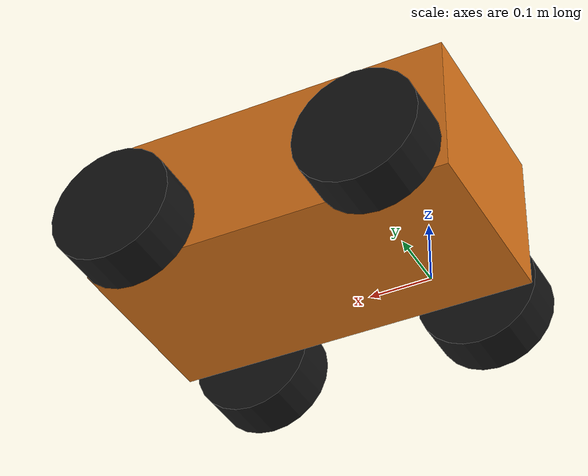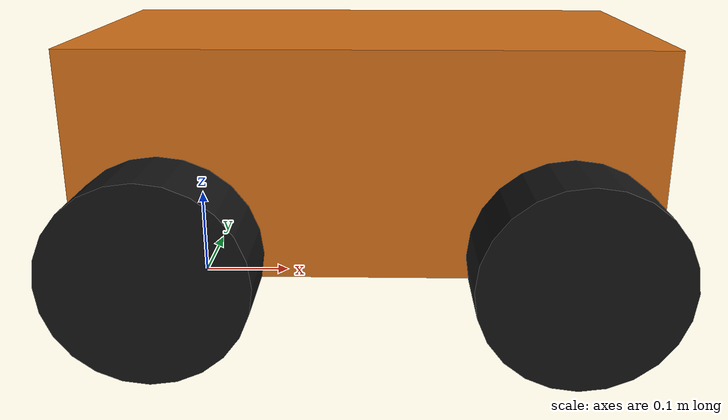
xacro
<?xml version="1.0"?>
<robot name="fieldmind_rover" xmlns:xacro="http://www.ros.org/wiki/xacro">
  <xacro:arg name="profondeur" default="true"/>
  <xacro:arg name="prefixe_gz" default="/rover"/>

  <!-- Géométrie (m, kg) -->
  <xacro:property name="empattement" value="0.400"/>
  <xacro:property name="voie_avant" value="0.446"/>
  <xacro:property name="voie_arriere" value="0.438"/>
  <xacro:property name="r_roue" value="0.100"/>
  <xacro:property name="l_roue" value="0.080"/>
  <xacro:property name="longueur" value="0.70"/>
  <xacro:property name="garde_sol" value="0.065"/>
  <!-- Couple maximal par roue arrière : 2,5 N·m moteur × 3 de réduction / 2 roues. -->
  <xacro:property name="couple_roue" value="3.75"/>
  <xacro:property name="x_centre" value="0.20"/>
  <xacro:property name="masse_caisse" value="12.3"/>
  <xacro:property name="masse_roue" value="0.35"/>
  <xacro:property name="braquage_butee" value="0.698"/>

  <xacro:macro name="inertie_boite" params="m x y z">
    <inertia ixx="${m*(y*y+z*z)/12}" iyy="${m*(x*x+z*z)/12}" izz="${m*(x*x+y*y)/12}" ixy="0" ixz="0" iyz="0"/>
  </xacro:macro>
  <xacro:macro name="inertie_cylindre_y" params="m r l">
    <inertia ixx="${m*(3*r*r+l*l)/12}" iyy="${m*r*r/2}" izz="${m*(3*r*r+l*l)/12}" ixy="0" ixz="0" iyz="0"/>
  </xacro:macro>

  <material name="caisse"><color rgba="0.85 0.45 0.10 1"/></material>
  <material name="pneu"><color rgba="0.08 0.08 0.08 1"/></material>

  <link name="base_footprint"/>
  <link name="base_link">
    <inertial>
      <origin xyz="${x_centre - 0.03} 0 0.06"/>
      <mass value="${masse_caisse}"/>
      <xacro:inertie_boite m="${masse_caisse}" x="0.6" y="0.32" z="0.235"/>
    </inertial>
    <visual>
      <origin xyz="${x_centre} 0 ${garde_sol - r_roue + 0.1175}"/>
      <geometry><box size="0.6 0.318 0.235"/></geometry>
      <material name="caisse"/>
    </visual>
    <collision>
      <origin xyz="${x_centre} 0 ${garde_sol - r_roue + 0.1175}"/>
      <geometry><box size="0.6 0.318 0.235"/></geometry>
    </collision>
    <!-- Pare-chocs avant et arrière -->
    <collision>
      <origin xyz="${x_centre + longueur/2 - 0.025} 0 ${garde_sol - r_roue + 0.09}"/>
      <geometry><box size="0.05 0.28 0.10"/></geometry>
    </collision>
    <collision>
      <origin xyz="${x_centre - longueur/2 + 0.025} 0 ${garde_sol - r_roue + 0.09}"/>
      <geometry><box size="0.05 0.28 0.10"/></geometry>
    </collision>
  </link>
  <joint name="base_footprint_joint" type="fixed">
    <parent link="base_footprint"/><child link="base_link"/>
    <origin xyz="0 0 ${r_roue}"/>
  </joint>

  <!-- Roues arrière motrices -->
  <xacro:macro name="roue" params="nom parent x y couple">
    <link name="${nom}">
      <inertial><mass value="${masse_roue}"/><xacro:inertie_cylindre_y m="${masse_roue}" r="${r_roue}" l="${l_roue}"/></inertial>
      <visual><origin rpy="${pi/2} 0 0"/><geometry><cylinder radius="${r_roue}" length="${l_roue}"/></geometry><material name="pneu"/></visual>
      <!-- Collision en sphère : le contact cylindre/maillage de DART est instable (le rover glisse
           sur les pentes) ; une sphère de même rayon donne un point de contact unique et stable. -->
      <collision><geometry><sphere radius="${r_roue}"/></geometry></collision>
    </link>
    <joint name="${nom}_joint" type="continuous">
      <parent link="${parent}"/><child link="${nom}"/>
      <origin xyz="${x} ${y} 0"/><axis xyz="0 1 0"/>
      <limit effort="${couple}" velocity="40.0"/>
      <dynamics damping="0.004" friction="0.0"/>
    </joint>
    <gazebo reference="${nom}">
      <collision><surface><friction><ode><mu>0.9</mu><mu2>0.9</mu2></ode></friction></surface></collision>
    </gazebo>
  </xacro:macro>
  <xacro:roue nom="roue_ar_g" parent="base_link" x="0" y="${voie_arriere/2}" couple="${couple_roue}"/>
  <xacro:roue nom="roue_ar_d" parent="base_link" x="0" y="${-voie_arriere/2}" couple="${couple_roue}"/>

  <!-- Fusées avant (braquage) et roues avant libres -->
  <xacro:macro name="fusee" params="cote y">
    <link name="fusee_${cote}">
      <inertial><mass value="0.1"/><inertia ixx="1e-4" iyy="1e-4" izz="1e-4" ixy="0" ixz="0" iyz="0"/></inertial>
    </link>
    <joint name="braquage_${cote}_joint" type="revolute">
      <parent link="base_link"/><child link="fusee_${cote}"/>
      <origin xyz="${empattement} ${y} 0"/><axis xyz="0 0 1"/>
      <limit lower="${-braquage_butee}" upper="${braquage_butee}" effort="3.4" velocity="7.0"/>
      <dynamics damping="0.3"/>
    </joint>
    <xacro:roue nom="roue_av_${cote}" parent="fusee_${cote}" x="0" y="0" couple="10.0"/>
  </xacro:macro>
  <xacro:fusee cote="g" y="${voie_avant/2}"/>
  <xacro:fusee cote="d" y="${-voie_avant/2}"/>

  <!-- ================================================================ capteurs -->
  <xacro:macro name="support" params="nom xyz rpy">
    <link name="${nom}"/>
    <joint name="${nom}_joint" type="fixed">
      <parent link="base_link"/><child link="${nom}"/>
      <origin xyz="${xyz}" rpy="${rpy}"/>
    </joint>
  </xacro:macro>

  <!-- Hauteurs du protocole (depuis le sol) ramenées à base_link (z = r_roue) ; x depuis l'essieu. -->
  <xacro:support nom="lidar_link" xyz="${0.18 + x_centre} 0 ${0.323 - r_roue}" rpy="0 0 0"/>
  <xacro:support nom="imu_link" xyz="${x_centre} 0 ${0.05}" rpy="0 0 0"/>
  <xacro:support nom="gnss_link" xyz="${-0.05 + x_centre} 0 ${0.31 - r_roue}" rpy="0 0 0"/>
  <xacro:support nom="camera_link" xyz="${0.162 + x_centre} -0.012 ${0.269 - r_roue}" rpy="0 0.1745 0"/>
  <link name="camera_optical_frame"/>
  <joint name="camera_optical_joint" type="fixed">
    <parent link="camera_link"/><child link="camera_optical_frame"/>
    <origin rpy="${-pi/2} 0 ${-pi/2}"/>
  </joint>

  <gazebo reference="lidar_link">
    <sensor name="lidar" type="gpu_lidar">
      <update_rate>6</update_rate>
      <topic>$(arg prefixe_gz)/scan</topic>
      <gz_frame_id>lidar_link</gz_frame_id>
      <lidar>
        <scan><horizontal><samples>360</samples><min_angle>-3.14159</min_angle><max_angle>3.12414</max_angle></horizontal></scan>
        <range><min>0.10</min><max>8.0</max><resolution>0.01</resolution></range>
        <noise><type>gaussian</type><mean>0</mean><stddev>0.01</stddev></noise>
      </lidar>
    </sensor>
  </gazebo>

  <gazebo reference="imu_link">
    <sensor name="imu" type="imu">
      <update_rate>50</update_rate>
      <topic>$(arg prefixe_gz)/imu</topic>
      <gz_frame_id>imu_link</gz_frame_id>
      <imu>
        <!-- Orientation absolue (est, nord, haut), comme le mode « rotation vector » du BNO085
             (fusion avec le magnétomètre). Par défaut Gazebo la donne relative au départ. -->
        <orientation_reference_frame><localization>ENU</localization></orientation_reference_frame>
        <angular_velocity>
          <x><noise type="gaussian"><stddev>0.003</stddev><bias_mean>0.002</bias_mean></noise></x>
          <y><noise type="gaussian"><stddev>0.003</stddev><bias_mean>0.002</bias_mean></noise></y>
          <z><noise type="gaussian"><stddev>0.003</stddev><bias_mean>0.002</bias_mean></noise></z>
        </angular_velocity>
        <linear_acceleration>
          <x><noise type="gaussian"><stddev>0.05</stddev></noise></x>
          <y><noise type="gaussian"><stddev>0.05</stddev></noise></y>
          <z><noise type="gaussian"><stddev>0.05</stddev></noise></z>
        </linear_acceleration>
      </imu>
    </sensor>
  </gazebo>

  <gazebo reference="gnss_link">
    <sensor name="gnss" type="navsat">
      <update_rate>10</update_rate>
      <topic>$(arg prefixe_gz)/navsat</topic>
      <gz_frame_id>gnss_link</gz_frame_id>
      <!-- Sans bruit ici (Gazebo l'appliquerait en degrés) : l'erreur du ZED-F9P (RTK fixe,
           flottant ou autonome selon le couvert) est modélisée par fieldmind_simulation/recepteur_gnss. -->
    </sensor>
  </gazebo>

  <gazebo reference="camera_link">
    <sensor name="camera" type="camera">
      <update_rate>5</update_rate>
      <topic>$(arg prefixe_gz)/camera/image</topic>
      <gz_frame_id>camera_optical_frame</gz_frame_id>
      <camera>
        <camera_info_topic>$(arg prefixe_gz)/camera/camera_info</camera_info_topic>
        <horizontal_fov>1.780</horizontal_fov>
        <image><width>640</width><height>360</height><format>R8G8B8</format></image>
        <clip><near>0.05</near><far>120</far></clip>
        <noise><type>gaussian</type><mean>0</mean><stddev>0.007</stddev></noise>
      </camera>
    </sensor>
    <xacro:if value="$(arg profondeur)">
      <sensor name="profondeur" type="rgbd_camera">
        <update_rate>5</update_rate>
        <topic>$(arg prefixe_gz)/profondeur</topic>
        <gz_frame_id>camera_link</gz_frame_id>
        <camera>
          <horizontal_fov>1.274</horizontal_fov>
          <image><width>320</width><height>200</height></image>
          <clip><near>0.2</near><far>10.0</far></clip>
          <depth_camera><clip><near>0.2</near><far>10.0</far></clip></depth_camera>
          <noise><type>gaussian</type><mean>0</mean><stddev>0.01</stddev></noise>
        </camera>
      </sensor>
    </xacro:if>
  </gazebo>

  <!-- ================================================================ actionneurs -->
  <gazebo>
    <!-- Vérité terrain (évaluation et affichage de la simulation, jamais lue par le cerveau). -->
    <plugin filename="gz-sim-pose-publisher-system" name="gz::sim::systems::PosePublisher">
      <publish_link_pose>false</publish_link_pose>
      <publish_model_pose>true</publish_model_pose>
      <use_pose_vector_msg>false</use_pose_vector_msg>
      <update_frequency>30</update_frequency>
    </plugin>
    <plugin filename="gz-sim-joint-state-publisher-system" name="gz::sim::systems::JointStatePublisher">
      <topic>$(arg prefixe_gz)/joint_states</topic>
    </plugin>
    <plugin filename="gz-sim-joint-controller-system" name="gz::sim::systems::JointController">
      <joint_name>roue_ar_g_joint</joint_name>
      <topic>$(arg prefixe_gz)/roue_ar_g/cmd_vel</topic>
    </plugin>
    <plugin filename="gz-sim-joint-controller-system" name="gz::sim::systems::JointController">
      <joint_name>roue_ar_d_joint</joint_name>
      <topic>$(arg prefixe_gz)/roue_ar_d/cmd_vel</topic>
    </plugin>
    <!-- Servo de direction : suit la position commandée (déjà filtrée par le modèle du servo du
         contrôleur embarqué : vitesse, zone morte, jeu), couple limité à 3,4 N·m par l'effort. -->
    <plugin filename="gz-sim-joint-position-controller-system" name="gz::sim::systems::JointPositionController">
      <joint_name>braquage_g_joint</joint_name>
      <topic>$(arg prefixe_gz)/braquage_g/cmd_pos</topic>
      <use_velocity_commands>true</use_velocity_commands>
      <p_gain>30</p_gain><cmd_max>7.0</cmd_max><cmd_min>-7.0</cmd_min>
    </plugin>
    <plugin filename="gz-sim-joint-position-controller-system" name="gz::sim::systems::JointPositionController">
      <joint_name>braquage_d_joint</joint_name>
      <topic>$(arg prefixe_gz)/braquage_d/cmd_pos</topic>
      <use_velocity_commands>true</use_velocity_commands>
      <p_gain>30</p_gain><cmd_max>7.0</cmd_max><cmd_min>-7.0</cmd_min>
    </plugin>
  </gazebo>
</robot>
